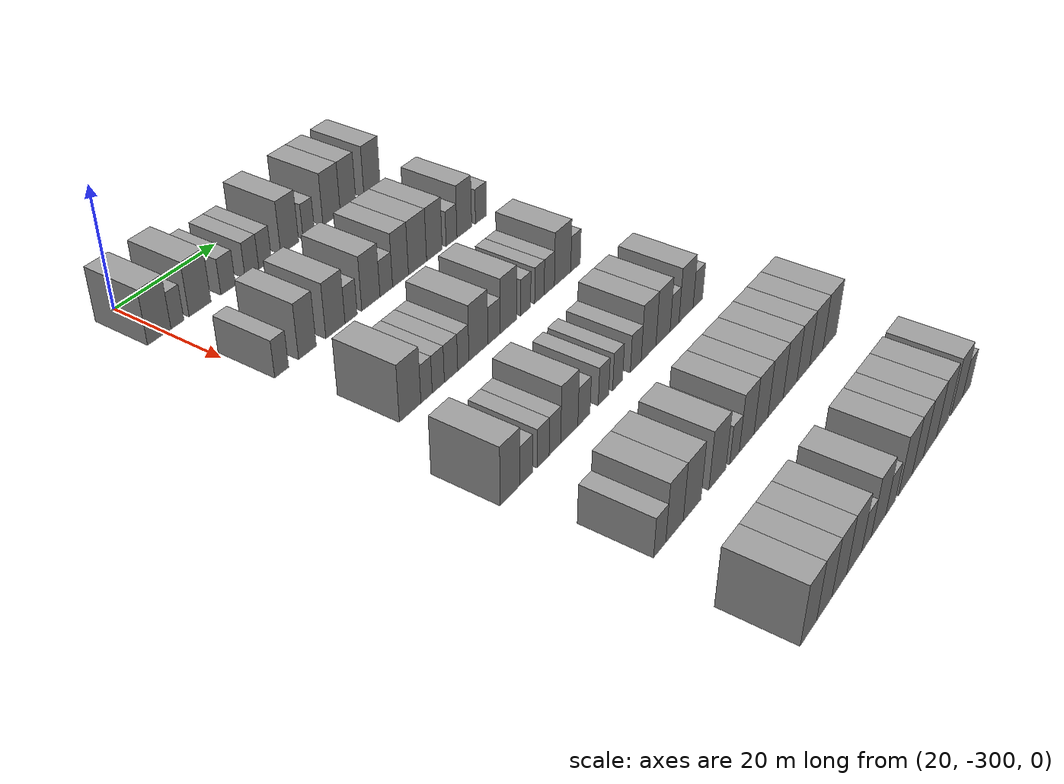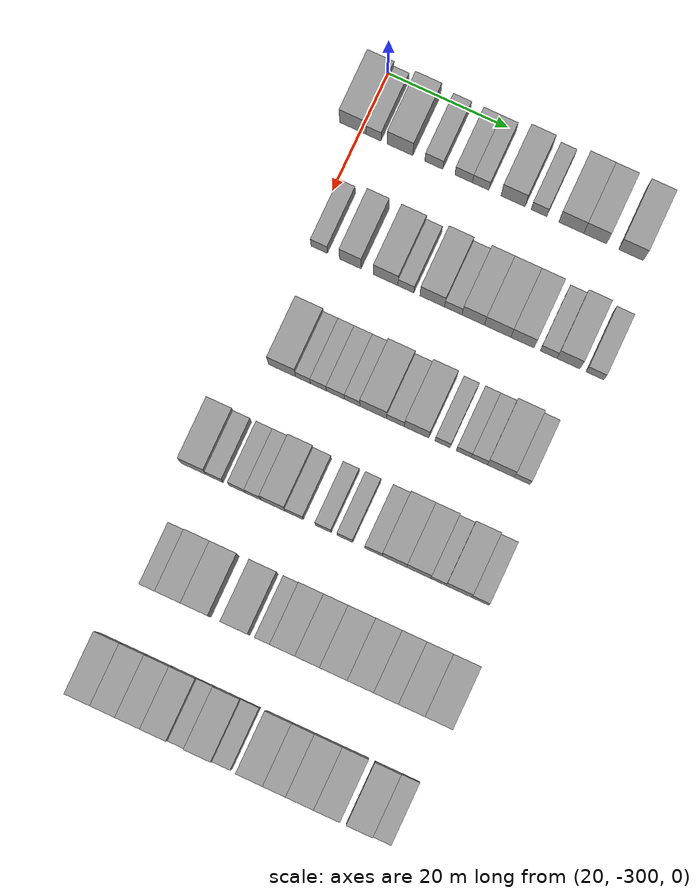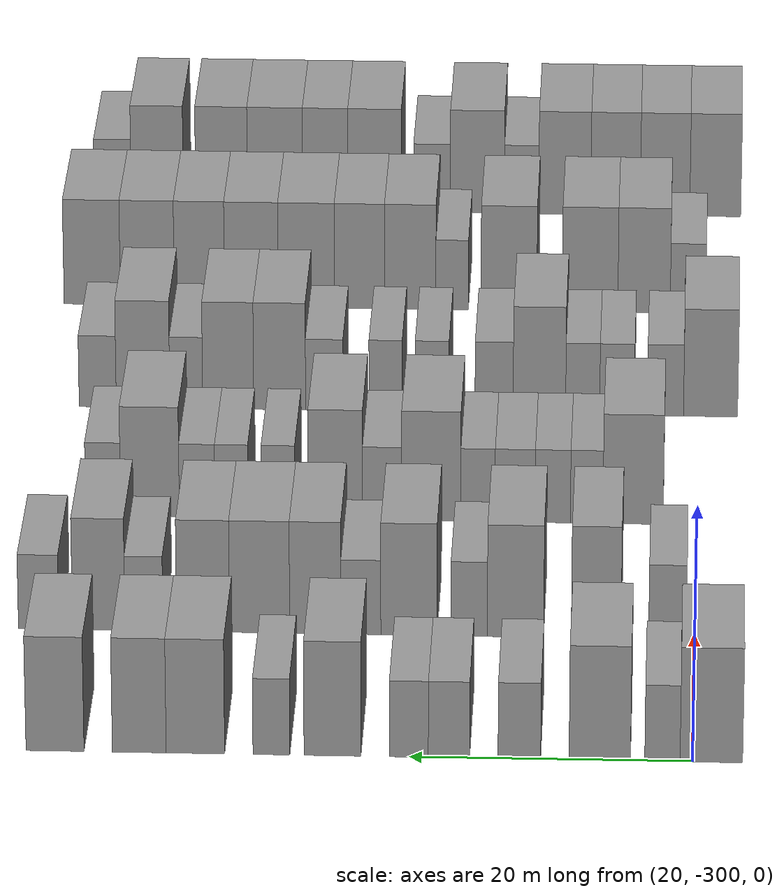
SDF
<sdf version="1.6">
 <world name="default">
  <model name="building_14">
   <static>1</static>
   <pose>25.0000 -301.2562 0 0.000000 0.000000 0.000000</pose>
   <link name="link">
    <pose>0 0 4.50 0 0 0</pose>
    <collision name="collision"><geometry><box><size>10.0000 4.3950 9.0000</size></box></geometry></collision>
    <visual name="visual">
     <cast_shadows>0</cast_shadows>
     <geometry><box><size>10.0000 4.3950 9.0000</size></box></geometry>
     <material>
      <script>
       <uri>model://grey_wall/materials/scripts</uri>
       <uri>model://grey_wall/materials/textures</uri>
       <name>vrc/grey_wall</name>
      </script>
     </material>
    </visual>
   </link>
  </model>
  <model name="building_15">
   <static>1</static>
   <pose>25.0000 -297.8179 0 0.000000 0.000000 0.000000</pose>
   <link name="link">
    <pose>0 0 3.00 0 0 0</pose>
    <collision name="collision"><geometry><box><size>10.0000 2.4814 6.0000</size></box></geometry></collision>
    <visual name="visual">
     <cast_shadows>0</cast_shadows>
     <geometry><box><size>10.0000 2.4814 6.0000</size></box></geometry>
     <material>
      <script>
       <uri>model://grey_wall/materials/scripts</uri>
       <uri>model://grey_wall/materials/textures</uri>
       <name>vrc/grey_wall</name>
      </script>
     </material>
    </visual>
   </link>
  </model>
  <model name="building_16">
   <static>1</static>
   <pose>25.0000 -293.4180 0 0.000000 0.000000 0.000000</pose>
   <link name="link">
    <pose>0 0 4.50 0 0 0</pose>
    <collision name="collision"><geometry><box><size>10.0000 4.3184 9.0000</size></box></geometry></collision>
    <visual name="visual">
     <cast_shadows>0</cast_shadows>
     <geometry><box><size>10.0000 4.3184 9.0000</size></box></geometry>
     <material>
      <script>
       <uri>model://grey_wall/materials/scripts</uri>
       <uri>model://grey_wall/materials/textures</uri>
       <name>vrc/grey_wall</name>
      </script>
     </material>
    </visual>
   </link>
  </model>
  <model name="building_17">
   <static>1</static>
   <pose>25.0000 -287.7597 0 0.000000 0.000000 0.000000</pose>
   <link name="link">
    <pose>0 0 3.00 0 0 0</pose>
    <collision name="collision"><geometry><box><size>10.0000 2.9983 6.0000</size></box></geometry></collision>
    <visual name="visual">
     <cast_shadows>0</cast_shadows>
     <geometry><box><size>10.0000 2.9983 6.0000</size></box></geometry>
     <material>
      <script>
       <uri>model://grey_wall/materials/scripts</uri>
       <uri>model://grey_wall/materials/textures</uri>
       <name>vrc/grey_wall</name>
      </script>
     </material>
    </visual>
   </link>
  </model>
  <model name="building_18">
   <static>1</static>
   <pose>25.0000 -282.8046 0 0.000000 0.000000 0.000000</pose>
   <link name="link">
    <pose>0 0 3.00 0 0 0</pose>
    <collision name="collision"><geometry><box><size>10.0000 2.9120 6.0000</size></box></geometry></collision>
    <visual name="visual">
     <cast_shadows>0</cast_shadows>
     <geometry><box><size>10.0000 2.9120 6.0000</size></box></geometry>
     <material>
      <script>
       <uri>model://grey_wall/materials/scripts</uri>
       <uri>model://grey_wall/materials/textures</uri>
       <name>vrc/grey_wall</name>
      </script>
     </material>
    </visual>
   </link>
  </model>
  <model name="building_19">
   <static>1</static>
   <pose>25.0000 -279.9776 0 0.000000 0.000000 0.000000</pose>
   <link name="link">
    <pose>0 0 3.00 0 0 0</pose>
    <collision name="collision"><geometry><box><size>10.0000 2.7420 6.0000</size></box></geometry></collision>
    <visual name="visual">
     <cast_shadows>0</cast_shadows>
     <geometry><box><size>10.0000 2.7420 6.0000</size></box></geometry>
     <material>
      <script>
       <uri>model://grey_wall/materials/scripts</uri>
       <uri>model://grey_wall/materials/textures</uri>
       <name>vrc/grey_wall</name>
      </script>
     </material>
    </visual>
   </link>
  </model>
  <model name="building_20">
   <static>1</static>
   <pose>25.0000 -274.6007 0 0.000000 0.000000 0.000000</pose>
   <link name="link">
    <pose>0 0 4.50 0 0 0</pose>
    <collision name="collision"><geometry><box><size>10.0000 4.0118 9.0000</size></box></geometry></collision>
    <visual name="visual">
     <cast_shadows>0</cast_shadows>
     <geometry><box><size>10.0000 4.0118 9.0000</size></box></geometry>
     <material>
      <script>
       <uri>model://grey_wall/materials/scripts</uri>
       <uri>model://grey_wall/materials/textures</uri>
       <name>vrc/grey_wall</name>
      </script>
     </material>
    </visual>
   </link>
  </model>
  <model name="building_21">
   <static>1</static>
   <pose>25.0000 -270.2955 0 0.000000 0.000000 0.000000</pose>
   <link name="link">
    <pose>0 0 3.00 0 0 0</pose>
    <collision name="collision"><geometry><box><size>10.0000 2.5986 6.0000</size></box></geometry></collision>
    <visual name="visual">
     <cast_shadows>0</cast_shadows>
     <geometry><box><size>10.0000 2.5986 6.0000</size></box></geometry>
     <material>
      <script>
       <uri>model://grey_wall/materials/scripts</uri>
       <uri>model://grey_wall/materials/textures</uri>
       <name>vrc/grey_wall</name>
      </script>
     </material>
    </visual>
   </link>
  </model>
  <model name="building_22">
   <static>1</static>
   <pose>25.0000 -264.9342 0 0.000000 0.000000 0.000000</pose>
   <link name="link">
    <pose>0 0 4.50 0 0 0</pose>
    <collision name="collision"><geometry><box><size>10.0000 4.1242 9.0000</size></box></geometry></collision>
    <visual name="visual">
     <cast_shadows>0</cast_shadows>
     <geometry><box><size>10.0000 4.1242 9.0000</size></box></geometry>
     <material>
      <script>
       <uri>model://grey_wall/materials/scripts</uri>
       <uri>model://grey_wall/materials/textures</uri>
       <name>vrc/grey_wall</name>
      </script>
     </material>
    </visual>
   </link>
  </model>
  <model name="building_23">
   <static>1</static>
   <pose>25.0000 -260.9729 0 0.000000 0.000000 0.000000</pose>
   <link name="link">
    <pose>0 0 4.50 0 0 0</pose>
    <collision name="collision"><geometry><box><size>10.0000 3.7984 9.0000</size></box></geometry></collision>
    <visual name="visual">
     <cast_shadows>0</cast_shadows>
     <geometry><box><size>10.0000 3.7984 9.0000</size></box></geometry>
     <material>
      <script>
       <uri>model://grey_wall/materials/scripts</uri>
       <uri>model://grey_wall/materials/textures</uri>
       <name>vrc/grey_wall</name>
      </script>
     </material>
    </visual>
   </link>
  </model>
  <model name="building_24">
   <static>1</static>
   <pose>25.0000 -255.0249 0 0.000000 0.000000 0.000000</pose>
   <link name="link">
    <pose>0 0 4.50 0 0 0</pose>
    <collision name="collision"><geometry><box><size>10.0000 4.0975 9.0000</size></box></geometry></collision>
    <visual name="visual">
     <cast_shadows>0</cast_shadows>
     <geometry><box><size>10.0000 4.0975 9.0000</size></box></geometry>
     <material>
      <script>
       <uri>model://grey_wall/materials/scripts</uri>
       <uri>model://grey_wall/materials/textures</uri>
       <name>vrc/grey_wall</name>
      </script>
     </material>
    </visual>
   </link>
  </model>
  <model name="building_187">
   <static>1</static>
   <pose>44.0000 -298.0338 0 0.000000 0.000000 0.000000</pose>
   <link name="link">
    <pose>0 0 3.00 0 0 0</pose>
    <collision name="collision"><geometry><box><size>10.0000 2.7262 6.0000</size></box></geometry></collision>
    <visual name="visual">
     <cast_shadows>0</cast_shadows>
     <geometry><box><size>10.0000 2.7262 6.0000</size></box></geometry>
     <material>
      <script>
       <uri>model://grey_wall/materials/scripts</uri>
       <uri>model://grey_wall/materials/textures</uri>
       <name>vrc/grey_wall</name>
      </script>
     </material>
    </visual>
   </link>
  </model>
  <model name="building_188">
   <static>1</static>
   <pose>44.0000 -292.8698 0 0.000000 0.000000 0.000000</pose>
   <link name="link">
    <pose>0 0 4.50 0 0 0</pose>
    <collision name="collision"><geometry><box><size>10.0000 3.6018 9.0000</size></box></geometry></collision>
    <visual name="visual">
     <cast_shadows>0</cast_shadows>
     <geometry><box><size>10.0000 3.6018 9.0000</size></box></geometry>
     <material>
      <script>
       <uri>model://grey_wall/materials/scripts</uri>
       <uri>model://grey_wall/materials/textures</uri>
       <name>vrc/grey_wall</name>
      </script>
     </material>
    </visual>
   </link>
  </model>
  <model name="building_189">
   <static>1</static>
   <pose>44.0000 -287.0259 0 0.000000 0.000000 0.000000</pose>
   <link name="link">
    <pose>0 0 4.50 0 0 0</pose>
    <collision name="collision"><geometry><box><size>10.0000 4.0859 9.0000</size></box></geometry></collision>
    <visual name="visual">
     <cast_shadows>0</cast_shadows>
     <geometry><box><size>10.0000 4.0859 9.0000</size></box></geometry>
     <material>
      <script>
       <uri>model://grey_wall/materials/scripts</uri>
       <uri>model://grey_wall/materials/textures</uri>
       <name>vrc/grey_wall</name>
      </script>
     </material>
    </visual>
   </link>
  </model>
  <model name="building_190">
   <static>1</static>
   <pose>44.0000 -283.6602 0 0.000000 0.000000 0.000000</pose>
   <link name="link">
    <pose>0 0 3.00 0 0 0</pose>
    <collision name="collision"><geometry><box><size>10.0000 2.6455 6.0000</size></box></geometry></collision>
    <visual name="visual">
     <cast_shadows>0</cast_shadows>
     <geometry><box><size>10.0000 2.6455 6.0000</size></box></geometry>
     <material>
      <script>
       <uri>model://grey_wall/materials/scripts</uri>
       <uri>model://grey_wall/materials/textures</uri>
       <name>vrc/grey_wall</name>
      </script>
     </material>
    </visual>
   </link>
  </model>
  <model name="building_191">
   <static>1</static>
   <pose>44.0000 -279.2972 0 0.000000 0.000000 0.000000</pose>
   <link name="link">
    <pose>0 0 4.50 0 0 0</pose>
    <collision name="collision"><geometry><box><size>10.0000 4.0805 9.0000</size></box></geometry></collision>
    <visual name="visual">
     <cast_shadows>0</cast_shadows>
     <geometry><box><size>10.0000 4.0805 9.0000</size></box></geometry>
     <material>
      <script>
       <uri>model://grey_wall/materials/scripts</uri>
       <uri>model://grey_wall/materials/textures</uri>
       <name>vrc/grey_wall</name>
      </script>
     </material>
    </visual>
   </link>
  </model>
  <model name="building_192">
   <static>1</static>
   <pose>44.0000 -275.8101 0 0.000000 0.000000 0.000000</pose>
   <link name="link">
    <pose>0 0 3.00 0 0 0</pose>
    <collision name="collision"><geometry><box><size>10.0000 2.8938 6.0000</size></box></geometry></collision>
    <visual name="visual">
     <cast_shadows>0</cast_shadows>
     <geometry><box><size>10.0000 2.8938 6.0000</size></box></geometry>
     <material>
      <script>
       <uri>model://grey_wall/materials/scripts</uri>
       <uri>model://grey_wall/materials/textures</uri>
       <name>vrc/grey_wall</name>
      </script>
     </material>
    </visual>
   </link>
  </model>
  <model name="building_193">
   <static>1</static>
   <pose>44.0000 -272.5025 0 0.000000 0.000000 0.000000</pose>
   <link name="link">
    <pose>0 0 4.50 0 0 0</pose>
    <collision name="collision"><geometry><box><size>10.0000 3.7213 9.0000</size></box></geometry></collision>
    <visual name="visual">
     <cast_shadows>0</cast_shadows>
     <geometry><box><size>10.0000 3.7213 9.0000</size></box></geometry>
     <material>
      <script>
       <uri>model://grey_wall/materials/scripts</uri>
       <uri>model://grey_wall/materials/textures</uri>
       <name>vrc/grey_wall</name>
      </script>
     </material>
    </visual>
   </link>
  </model>
  <model name="building_194">
   <static>1</static>
   <pose>44.0000 -268.4573 0 0.000000 0.000000 0.000000</pose>
   <link name="link">
    <pose>0 0 4.50 0 0 0</pose>
    <collision name="collision"><geometry><box><size>10.0000 4.3690 9.0000</size></box></geometry></collision>
    <visual name="visual">
     <cast_shadows>0</cast_shadows>
     <geometry><box><size>10.0000 4.3690 9.0000</size></box></geometry>
     <material>
      <script>
       <uri>model://grey_wall/materials/scripts</uri>
       <uri>model://grey_wall/materials/textures</uri>
       <name>vrc/grey_wall</name>
      </script>
     </material>
    </visual>
   </link>
  </model>
  <model name="building_195">
   <static>1</static>
   <pose>44.0000 -264.3526 0 0.000000 0.000000 0.000000</pose>
   <link name="link">
    <pose>0 0 4.50 0 0 0</pose>
    <collision name="collision"><geometry><box><size>10.0000 3.8405 9.0000</size></box></geometry></collision>
    <visual name="visual">
     <cast_shadows>0</cast_shadows>
     <geometry><box><size>10.0000 3.8405 9.0000</size></box></geometry>
     <material>
      <script>
       <uri>model://grey_wall/materials/scripts</uri>
       <uri>model://grey_wall/materials/textures</uri>
       <name>vrc/grey_wall</name>
      </script>
     </material>
    </visual>
   </link>
  </model>
  <model name="building_196">
   <static>1</static>
   <pose>44.0000 -260.0542 0 0.000000 0.000000 0.000000</pose>
   <link name="link">
    <pose>0 0 3.00 0 0 0</pose>
    <collision name="collision"><geometry><box><size>10.0000 2.7563 6.0000</size></box></geometry></collision>
    <visual name="visual">
     <cast_shadows>0</cast_shadows>
     <geometry><box><size>10.0000 2.7563 6.0000</size></box></geometry>
     <material>
      <script>
       <uri>model://grey_wall/materials/scripts</uri>
       <uri>model://grey_wall/materials/textures</uri>
       <name>vrc/grey_wall</name>
      </script>
     </material>
    </visual>
   </link>
  </model>
  <model name="building_197">
   <static>1</static>
   <pose>44.0000 -256.7686 0 0.000000 0.000000 0.000000</pose>
   <link name="link">
    <pose>0 0 4.50 0 0 0</pose>
    <collision name="collision"><geometry><box><size>10.0000 3.8148 9.0000</size></box></geometry></collision>
    <visual name="visual">
     <cast_shadows>0</cast_shadows>
     <geometry><box><size>10.0000 3.8148 9.0000</size></box></geometry>
     <material>
      <script>
       <uri>model://grey_wall/materials/scripts</uri>
       <uri>model://grey_wall/materials/textures</uri>
       <name>vrc/grey_wall</name>
      </script>
     </material>
    </visual>
   </link>
  </model>
  <model name="building_198">
   <static>1</static>
   <pose>44.0000 -252.3925 0 0.000000 0.000000 0.000000</pose>
   <link name="link">
    <pose>0 0 3.00 0 0 0</pose>
    <collision name="collision"><geometry><box><size>10.0000 2.9374 6.0000</size></box></geometry></collision>
    <visual name="visual">
     <cast_shadows>0</cast_shadows>
     <geometry><box><size>10.0000 2.9374 6.0000</size></box></geometry>
     <material>
      <script>
       <uri>model://grey_wall/materials/scripts</uri>
       <uri>model://grey_wall/materials/textures</uri>
       <name>vrc/grey_wall</name>
      </script>
     </material>
    </visual>
   </link>
  </model>
  <model name="building_365">
   <static>1</static>
   <pose>63.0000 -295.3301 0 0.000000 0.000000 0.000000</pose>
   <link name="link">
    <pose>0 0 4.50 0 0 0</pose>
    <collision name="collision"><geometry><box><size>10.0000 4.4912 9.0000</size></box></geometry></collision>
    <visual name="visual">
     <cast_shadows>0</cast_shadows>
     <geometry><box><size>10.0000 4.4912 9.0000</size></box></geometry>
     <material>
      <script>
       <uri>model://grey_wall/materials/scripts</uri>
       <uri>model://grey_wall/materials/textures</uri>
       <name>vrc/grey_wall</name>
      </script>
     </material>
    </visual>
   </link>
  </model>
  <model name="building_366">
   <static>1</static>
   <pose>63.0000 -291.8712 0 0.000000 0.000000 0.000000</pose>
   <link name="link">
    <pose>0 0 3.00 0 0 0</pose>
    <collision name="collision"><geometry><box><size>10.0000 2.4265 6.0000</size></box></geometry></collision>
    <visual name="visual">
     <cast_shadows>0</cast_shadows>
     <geometry><box><size>10.0000 2.4265 6.0000</size></box></geometry>
     <material>
      <script>
       <uri>model://grey_wall/materials/scripts</uri>
       <uri>model://grey_wall/materials/textures</uri>
       <name>vrc/grey_wall</name>
      </script>
     </material>
    </visual>
   </link>
  </model>
  <model name="building_367">
   <static>1</static>
   <pose>63.0000 -289.3367 0 0.000000 0.000000 0.000000</pose>
   <link name="link">
    <pose>0 0 3.00 0 0 0</pose>
    <collision name="collision"><geometry><box><size>10.0000 2.6427 6.0000</size></box></geometry></collision>
    <visual name="visual">
     <cast_shadows>0</cast_shadows>
     <geometry><box><size>10.0000 2.6427 6.0000</size></box></geometry>
     <material>
      <script>
       <uri>model://grey_wall/materials/scripts</uri>
       <uri>model://grey_wall/materials/textures</uri>
       <name>vrc/grey_wall</name>
      </script>
     </material>
    </visual>
   </link>
  </model>
  <model name="building_368">
   <static>1</static>
   <pose>63.0000 -286.5246 0 0.000000 0.000000 0.000000</pose>
   <link name="link">
    <pose>0 0 3.00 0 0 0</pose>
    <collision name="collision"><geometry><box><size>10.0000 2.9815 6.0000</size></box></geometry></collision>
    <visual name="visual">
     <cast_shadows>0</cast_shadows>
     <geometry><box><size>10.0000 2.9815 6.0000</size></box></geometry>
     <material>
      <script>
       <uri>model://grey_wall/materials/scripts</uri>
       <uri>model://grey_wall/materials/textures</uri>
       <name>vrc/grey_wall</name>
      </script>
     </material>
    </visual>
   </link>
  </model>
  <model name="building_369">
   <static>1</static>
   <pose>63.0000 -283.7560 0 0.000000 0.000000 0.000000</pose>
   <link name="link">
    <pose>0 0 3.00 0 0 0</pose>
    <collision name="collision"><geometry><box><size>10.0000 2.5556 6.0000</size></box></geometry></collision>
    <visual name="visual">
     <cast_shadows>0</cast_shadows>
     <geometry><box><size>10.0000 2.5556 6.0000</size></box></geometry>
     <material>
      <script>
       <uri>model://grey_wall/materials/scripts</uri>
       <uri>model://grey_wall/materials/textures</uri>
       <name>vrc/grey_wall</name>
      </script>
     </material>
    </visual>
   </link>
  </model>
  <model name="building_370">
   <static>1</static>
   <pose>63.0000 -280.2712 0 0.000000 0.000000 0.000000</pose>
   <link name="link">
    <pose>0 0 4.50 0 0 0</pose>
    <collision name="collision"><geometry><box><size>10.0000 4.4140 9.0000</size></box></geometry></collision>
    <visual name="visual">
     <cast_shadows>0</cast_shadows>
     <geometry><box><size>10.0000 4.4140 9.0000</size></box></geometry>
     <material>
      <script>
       <uri>model://grey_wall/materials/scripts</uri>
       <uri>model://grey_wall/materials/textures</uri>
       <name>vrc/grey_wall</name>
      </script>
     </material>
    </visual>
   </link>
  </model>
  <model name="building_371">
   <static>1</static>
   <pose>63.0000 -276.6045 0 0.000000 0.000000 0.000000</pose>
   <link name="link">
    <pose>0 0 3.00 0 0 0</pose>
    <collision name="collision"><geometry><box><size>10.0000 2.9195 6.0000</size></box></geometry></collision>
    <visual name="visual">
     <cast_shadows>0</cast_shadows>
     <geometry><box><size>10.0000 2.9195 6.0000</size></box></geometry>
     <material>
      <script>
       <uri>model://grey_wall/materials/scripts</uri>
       <uri>model://grey_wall/materials/textures</uri>
       <name>vrc/grey_wall</name>
      </script>
     </material>
    </visual>
   </link>
  </model>
  <model name="building_372">
   <static>1</static>
   <pose>63.0000 -273.1196 0 0.000000 0.000000 0.000000</pose>
   <link name="link">
    <pose>0 0 4.50 0 0 0</pose>
    <collision name="collision"><geometry><box><size>10.0000 4.0504 9.0000</size></box></geometry></collision>
    <visual name="visual">
     <cast_shadows>0</cast_shadows>
     <geometry><box><size>10.0000 4.0504 9.0000</size></box></geometry>
     <material>
      <script>
       <uri>model://grey_wall/materials/scripts</uri>
       <uri>model://grey_wall/materials/textures</uri>
       <name>vrc/grey_wall</name>
      </script>
     </material>
    </visual>
   </link>
  </model>
  <model name="building_373">
   <static>1</static>
   <pose>63.0000 -268.8436 0 0.000000 0.000000 0.000000</pose>
   <link name="link">
    <pose>0 0 3.00 0 0 0</pose>
    <collision name="collision"><geometry><box><size>10.0000 2.5015 6.0000</size></box></geometry></collision>
    <visual name="visual">
     <cast_shadows>0</cast_shadows>
     <geometry><box><size>10.0000 2.5015 6.0000</size></box></geometry>
     <material>
      <script>
       <uri>model://grey_wall/materials/scripts</uri>
       <uri>model://grey_wall/materials/textures</uri>
       <name>vrc/grey_wall</name>
      </script>
     </material>
    </visual>
   </link>
  </model>
  <model name="building_374">
   <static>1</static>
   <pose>63.0000 -265.3547 0 0.000000 0.000000 0.000000</pose>
   <link name="link">
    <pose>0 0 3.00 0 0 0</pose>
    <collision name="collision"><geometry><box><size>10.0000 2.4762 6.0000</size></box></geometry></collision>
    <visual name="visual">
     <cast_shadows>0</cast_shadows>
     <geometry><box><size>10.0000 2.4762 6.0000</size></box></geometry>
     <material>
      <script>
       <uri>model://grey_wall/materials/scripts</uri>
       <uri>model://grey_wall/materials/textures</uri>
       <name>vrc/grey_wall</name>
      </script>
     </material>
    </visual>
   </link>
  </model>
  <model name="building_375">
   <static>1</static>
   <pose>63.0000 -262.7815 0 0.000000 0.000000 0.000000</pose>
   <link name="link">
    <pose>0 0 3.00 0 0 0</pose>
    <collision name="collision"><geometry><box><size>10.0000 2.6702 6.0000</size></box></geometry></collision>
    <visual name="visual">
     <cast_shadows>0</cast_shadows>
     <geometry><box><size>10.0000 2.6702 6.0000</size></box></geometry>
     <material>
      <script>
       <uri>model://grey_wall/materials/scripts</uri>
       <uri>model://grey_wall/materials/textures</uri>
       <name>vrc/grey_wall</name>
      </script>
     </material>
    </visual>
   </link>
  </model>
  <model name="building_376">
   <static>1</static>
   <pose>63.0000 -259.2518 0 0.000000 0.000000 0.000000</pose>
   <link name="link">
    <pose>0 0 4.50 0 0 0</pose>
    <collision name="collision"><geometry><box><size>10.0000 4.3893 9.0000</size></box></geometry></collision>
    <visual name="visual">
     <cast_shadows>0</cast_shadows>
     <geometry><box><size>10.0000 4.3893 9.0000</size></box></geometry>
     <material>
      <script>
       <uri>model://grey_wall/materials/scripts</uri>
       <uri>model://grey_wall/materials/textures</uri>
       <name>vrc/grey_wall</name>
      </script>
     </material>
    </visual>
   </link>
  </model>
  <model name="building_377">
   <static>1</static>
   <pose>63.0000 -255.7470 0 0.000000 0.000000 0.000000</pose>
   <link name="link">
    <pose>0 0 3.00 0 0 0</pose>
    <collision name="collision"><geometry><box><size>10.0000 2.6202 6.0000</size></box></geometry></collision>
    <visual name="visual">
     <cast_shadows>0</cast_shadows>
     <geometry><box><size>10.0000 2.6202 6.0000</size></box></geometry>
     <material>
      <script>
       <uri>model://grey_wall/materials/scripts</uri>
       <uri>model://grey_wall/materials/textures</uri>
       <name>vrc/grey_wall</name>
      </script>
     </material>
    </visual>
   </link>
  </model>
  <model name="building_537">
   <static>1</static>
   <pose>82.0000 -301.0578 0 0.000000 0.000000 0.000000</pose>
   <link name="link">
    <pose>0 0 4.50 0 0 0</pose>
    <collision name="collision"><geometry><box><size>10.0000 4.1475 9.0000</size></box></geometry></collision>
    <visual name="visual">
     <cast_shadows>0</cast_shadows>
     <geometry><box><size>10.0000 4.1475 9.0000</size></box></geometry>
     <material>
      <script>
       <uri>model://grey_wall/materials/scripts</uri>
       <uri>model://grey_wall/materials/textures</uri>
       <name>vrc/grey_wall</name>
      </script>
     </material>
    </visual>
   </link>
  </model>
  <model name="building_538">
   <static>1</static>
   <pose>82.0000 -297.5977 0 0.000000 0.000000 0.000000</pose>
   <link name="link">
    <pose>0 0 3.00 0 0 0</pose>
    <collision name="collision"><geometry><box><size>10.0000 2.7727 6.0000</size></box></geometry></collision>
    <visual name="visual">
     <cast_shadows>0</cast_shadows>
     <geometry><box><size>10.0000 2.7727 6.0000</size></box></geometry>
     <material>
      <script>
       <uri>model://grey_wall/materials/scripts</uri>
       <uri>model://grey_wall/materials/textures</uri>
       <name>vrc/grey_wall</name>
      </script>
     </material>
    </visual>
   </link>
  </model>
  <model name="building_539">
   <static>1</static>
   <pose>82.0000 -293.8858 0 0.000000 0.000000 0.000000</pose>
   <link name="link">
    <pose>0 0 3.00 0 0 0</pose>
    <collision name="collision"><geometry><box><size>10.0000 2.6512 6.0000</size></box></geometry></collision>
    <visual name="visual">
     <cast_shadows>0</cast_shadows>
     <geometry><box><size>10.0000 2.6512 6.0000</size></box></geometry>
     <material>
      <script>
       <uri>model://grey_wall/materials/scripts</uri>
       <uri>model://grey_wall/materials/textures</uri>
       <name>vrc/grey_wall</name>
      </script>
     </material>
    </visual>
   </link>
  </model>
  <model name="building_540">
   <static>1</static>
   <pose>82.0000 -291.2548 0 0.000000 0.000000 0.000000</pose>
   <link name="link">
    <pose>0 0 3.00 0 0 0</pose>
    <collision name="collision"><geometry><box><size>10.0000 2.6107 6.0000</size></box></geometry></collision>
    <visual name="visual">
     <cast_shadows>0</cast_shadows>
     <geometry><box><size>10.0000 2.6107 6.0000</size></box></geometry>
     <material>
      <script>
       <uri>model://grey_wall/materials/scripts</uri>
       <uri>model://grey_wall/materials/textures</uri>
       <name>vrc/grey_wall</name>
      </script>
     </material>
    </visual>
   </link>
  </model>
  <model name="building_541">
   <static>1</static>
   <pose>82.0000 -287.9362 0 0.000000 0.000000 0.000000</pose>
   <link name="link">
    <pose>0 0 4.50 0 0 0</pose>
    <collision name="collision"><geometry><box><size>10.0000 4.0264 9.0000</size></box></geometry></collision>
    <visual name="visual">
     <cast_shadows>0</cast_shadows>
     <geometry><box><size>10.0000 4.0264 9.0000</size></box></geometry>
     <material>
      <script>
       <uri>model://grey_wall/materials/scripts</uri>
       <uri>model://grey_wall/materials/textures</uri>
       <name>vrc/grey_wall</name>
      </script>
     </material>
    </visual>
   </link>
  </model>
  <model name="building_542">
   <static>1</static>
   <pose>82.0000 -284.4585 0 0.000000 0.000000 0.000000</pose>
   <link name="link">
    <pose>0 0 3.00 0 0 0</pose>
    <collision name="collision"><geometry><box><size>10.0000 2.9289 6.0000</size></box></geometry></collision>
    <visual name="visual">
     <cast_shadows>0</cast_shadows>
     <geometry><box><size>10.0000 2.9289 6.0000</size></box></geometry>
     <material>
      <script>
       <uri>model://grey_wall/materials/scripts</uri>
       <uri>model://grey_wall/materials/textures</uri>
       <name>vrc/grey_wall</name>
      </script>
     </material>
    </visual>
   </link>
  </model>
  <model name="building_543">
   <static>1</static>
   <pose>82.0000 -279.6965 0 0.000000 0.000000 0.000000</pose>
   <link name="link">
    <pose>0 0 3.00 0 0 0</pose>
    <collision name="collision"><geometry><box><size>10.0000 2.5951 6.0000</size></box></geometry></collision>
    <visual name="visual">
     <cast_shadows>0</cast_shadows>
     <geometry><box><size>10.0000 2.5951 6.0000</size></box></geometry>
     <material>
      <script>
       <uri>model://grey_wall/materials/scripts</uri>
       <uri>model://grey_wall/materials/textures</uri>
       <name>vrc/grey_wall</name>
      </script>
     </material>
    </visual>
   </link>
  </model>
  <model name="building_544">
   <static>1</static>
   <pose>82.0000 -276.1270 0 0.000000 0.000000 0.000000</pose>
   <link name="link">
    <pose>0 0 3.00 0 0 0</pose>
    <collision name="collision"><geometry><box><size>10.0000 2.5439 6.0000</size></box></geometry></collision>
    <visual name="visual">
     <cast_shadows>0</cast_shadows>
     <geometry><box><size>10.0000 2.5439 6.0000</size></box></geometry>
     <material>
      <script>
       <uri>model://grey_wall/materials/scripts</uri>
       <uri>model://grey_wall/materials/textures</uri>
       <name>vrc/grey_wall</name>
      </script>
     </material>
    </visual>
   </link>
  </model>
  <model name="building_545">
   <static>1</static>
   <pose>82.0000 -271.4178 0 0.000000 0.000000 0.000000</pose>
   <link name="link">
    <pose>0 0 3.00 0 0 0</pose>
    <collision name="collision"><geometry><box><size>10.0000 2.8745 6.0000</size></box></geometry></collision>
    <visual name="visual">
     <cast_shadows>0</cast_shadows>
     <geometry><box><size>10.0000 2.8745 6.0000</size></box></geometry>
     <material>
      <script>
       <uri>model://grey_wall/materials/scripts</uri>
       <uri>model://grey_wall/materials/textures</uri>
       <name>vrc/grey_wall</name>
      </script>
     </material>
    </visual>
   </link>
  </model>
  <model name="building_546">
   <static>1</static>
   <pose>82.0000 -267.9855 0 0.000000 0.000000 0.000000</pose>
   <link name="link">
    <pose>0 0 4.50 0 0 0</pose>
    <collision name="collision"><geometry><box><size>10.0000 3.9901 9.0000</size></box></geometry></collision>
    <visual name="visual">
     <cast_shadows>0</cast_shadows>
     <geometry><box><size>10.0000 3.9901 9.0000</size></box></geometry>
     <material>
      <script>
       <uri>model://grey_wall/materials/scripts</uri>
       <uri>model://grey_wall/materials/textures</uri>
       <name>vrc/grey_wall</name>
      </script>
     </material>
    </visual>
   </link>
  </model>
  <model name="building_547">
   <static>1</static>
   <pose>82.0000 -264.0298 0 0.000000 0.000000 0.000000</pose>
   <link name="link">
    <pose>0 0 4.50 0 0 0</pose>
    <collision name="collision"><geometry><box><size>10.0000 3.9214 9.0000</size></box></geometry></collision>
    <visual name="visual">
     <cast_shadows>0</cast_shadows>
     <geometry><box><size>10.0000 3.9214 9.0000</size></box></geometry>
     <material>
      <script>
       <uri>model://grey_wall/materials/scripts</uri>
       <uri>model://grey_wall/materials/textures</uri>
       <name>vrc/grey_wall</name>
      </script>
     </material>
    </visual>
   </link>
  </model>
  <model name="building_548">
   <static>1</static>
   <pose>82.0000 -260.8040 0 0.000000 0.000000 0.000000</pose>
   <link name="link">
    <pose>0 0 3.00 0 0 0</pose>
    <collision name="collision"><geometry><box><size>10.0000 2.5300 6.0000</size></box></geometry></collision>
    <visual name="visual">
     <cast_shadows>0</cast_shadows>
     <geometry><box><size>10.0000 2.5300 6.0000</size></box></geometry>
     <material>
      <script>
       <uri>model://grey_wall/materials/scripts</uri>
       <uri>model://grey_wall/materials/textures</uri>
       <name>vrc/grey_wall</name>
      </script>
     </material>
    </visual>
   </link>
  </model>
  <model name="building_549">
   <static>1</static>
   <pose>82.0000 -257.4780 0 0.000000 0.000000 0.000000</pose>
   <link name="link">
    <pose>0 0 4.50 0 0 0</pose>
    <collision name="collision"><geometry><box><size>10.0000 4.1220 9.0000</size></box></geometry></collision>
    <visual name="visual">
     <cast_shadows>0</cast_shadows>
     <geometry><box><size>10.0000 4.1220 9.0000</size></box></geometry>
     <material>
      <script>
       <uri>model://grey_wall/materials/scripts</uri>
       <uri>model://grey_wall/materials/textures</uri>
       <name>vrc/grey_wall</name>
      </script>
     </material>
    </visual>
   </link>
  </model>
  <model name="building_550">
   <static>1</static>
   <pose>82.0000 -253.9893 0 0.000000 0.000000 0.000000</pose>
   <link name="link">
    <pose>0 0 3.00 0 0 0</pose>
    <collision name="collision"><geometry><box><size>10.0000 2.8555 6.0000</size></box></geometry></collision>
    <visual name="visual">
     <cast_shadows>0</cast_shadows>
     <geometry><box><size>10.0000 2.8555 6.0000</size></box></geometry>
     <material>
      <script>
       <uri>model://grey_wall/materials/scripts</uri>
       <uri>model://grey_wall/materials/textures</uri>
       <name>vrc/grey_wall</name>
      </script>
     </material>
    </visual>
   </link>
  </model>
  <model name="building_709">
   <static>1</static>
   <pose>101.0000 -299.2352 0 0.000000 0.000000 0.000000</pose>
   <link name="link">
    <pose>0 0 3.00 0 0 0</pose>
    <collision name="collision"><geometry><box><size>10.0000 2.8057 6.0000</size></box></geometry></collision>
    <visual name="visual">
     <cast_shadows>0</cast_shadows>
     <geometry><box><size>10.0000 2.8057 6.0000</size></box></geometry>
     <material>
      <script>
       <uri>model://grey_wall/materials/scripts</uri>
       <uri>model://grey_wall/materials/textures</uri>
       <name>vrc/grey_wall</name>
      </script>
     </material>
    </visual>
   </link>
  </model>
  <model name="building_710">
   <static>1</static>
   <pose>101.0000 -295.7695 0 0.000000 0.000000 0.000000</pose>
   <link name="link">
    <pose>0 0 4.50 0 0 0</pose>
    <collision name="collision"><geometry><box><size>10.0000 4.1257 9.0000</size></box></geometry></collision>
    <visual name="visual">
     <cast_shadows>0</cast_shadows>
     <geometry><box><size>10.0000 4.1257 9.0000</size></box></geometry>
     <material>
      <script>
       <uri>model://grey_wall/materials/scripts</uri>
       <uri>model://grey_wall/materials/textures</uri>
       <name>vrc/grey_wall</name>
      </script>
     </material>
    </visual>
   </link>
  </model>
  <model name="building_711">
   <static>1</static>
   <pose>101.0000 -291.5150 0 0.000000 0.000000 0.000000</pose>
   <link name="link">
    <pose>0 0 4.50 0 0 0</pose>
    <collision name="collision"><geometry><box><size>10.0000 4.3833 9.0000</size></box></geometry></collision>
    <visual name="visual">
     <cast_shadows>0</cast_shadows>
     <geometry><box><size>10.0000 4.3833 9.0000</size></box></geometry>
     <material>
      <script>
       <uri>model://grey_wall/materials/scripts</uri>
       <uri>model://grey_wall/materials/textures</uri>
       <name>vrc/grey_wall</name>
      </script>
     </material>
    </visual>
   </link>
  </model>
  <model name="building_712">
   <static>1</static>
   <pose>101.0000 -285.1224 0 0.000000 0.000000 0.000000</pose>
   <link name="link">
    <pose>0 0 4.50 0 0 0</pose>
    <collision name="collision"><geometry><box><size>10.0000 4.4019 9.0000</size></box></geometry></collision>
    <visual name="visual">
     <cast_shadows>0</cast_shadows>
     <geometry><box><size>10.0000 4.4019 9.0000</size></box></geometry>
     <material>
      <script>
       <uri>model://grey_wall/materials/scripts</uri>
       <uri>model://grey_wall/materials/textures</uri>
       <name>vrc/grey_wall</name>
      </script>
     </material>
    </visual>
   </link>
  </model>
  <model name="building_713">
   <static>1</static>
   <pose>101.0000 -280.6399 0 0.000000 0.000000 0.000000</pose>
   <link name="link">
    <pose>0 0 3.00 0 0 0</pose>
    <collision name="collision"><geometry><box><size>10.0000 2.5631 6.0000</size></box></geometry></collision>
    <visual name="visual">
     <cast_shadows>0</cast_shadows>
     <geometry><box><size>10.0000 2.5631 6.0000</size></box></geometry>
     <material>
      <script>
       <uri>model://grey_wall/materials/scripts</uri>
       <uri>model://grey_wall/materials/textures</uri>
       <name>vrc/grey_wall</name>
      </script>
     </material>
    </visual>
   </link>
  </model>
  <model name="building_714">
   <static>1</static>
   <pose>101.0000 -277.3312 0 0.000000 0.000000 0.000000</pose>
   <link name="link">
    <pose>0 0 4.50 0 0 0</pose>
    <collision name="collision"><geometry><box><size>10.0000 4.0543 9.0000</size></box></geometry></collision>
    <visual name="visual">
     <cast_shadows>0</cast_shadows>
     <geometry><box><size>10.0000 4.0543 9.0000</size></box></geometry>
     <material>
      <script>
       <uri>model://grey_wall/materials/scripts</uri>
       <uri>model://grey_wall/materials/textures</uri>
       <name>vrc/grey_wall</name>
      </script>
     </material>
    </visual>
   </link>
  </model>
  <model name="building_715">
   <static>1</static>
   <pose>101.0000 -273.3279 0 0.000000 0.000000 0.000000</pose>
   <link name="link">
    <pose>0 0 4.50 0 0 0</pose>
    <collision name="collision"><geometry><box><size>10.0000 3.9521 9.0000</size></box></geometry></collision>
    <visual name="visual">
     <cast_shadows>0</cast_shadows>
     <geometry><box><size>10.0000 3.9521 9.0000</size></box></geometry>
     <material>
      <script>
       <uri>model://grey_wall/materials/scripts</uri>
       <uri>model://grey_wall/materials/textures</uri>
       <name>vrc/grey_wall</name>
      </script>
     </material>
    </visual>
   </link>
  </model>
  <model name="building_716">
   <static>1</static>
   <pose>101.0000 -269.1280 0 0.000000 0.000000 0.000000</pose>
   <link name="link">
    <pose>0 0 4.50 0 0 0</pose>
    <collision name="collision"><geometry><box><size>10.0000 4.4478 9.0000</size></box></geometry></collision>
    <visual name="visual">
     <cast_shadows>0</cast_shadows>
     <geometry><box><size>10.0000 4.4478 9.0000</size></box></geometry>
     <material>
      <script>
       <uri>model://grey_wall/materials/scripts</uri>
       <uri>model://grey_wall/materials/textures</uri>
       <name>vrc/grey_wall</name>
      </script>
     </material>
    </visual>
   </link>
  </model>
  <model name="building_717">
   <static>1</static>
   <pose>101.0000 -264.7851 0 0.000000 0.000000 0.000000</pose>
   <link name="link">
    <pose>0 0 4.50 0 0 0</pose>
    <collision name="collision"><geometry><box><size>10.0000 4.2379 9.0000</size></box></geometry></collision>
    <visual name="visual">
     <cast_shadows>0</cast_shadows>
     <geometry><box><size>10.0000 4.2379 9.0000</size></box></geometry>
     <material>
      <script>
       <uri>model://grey_wall/materials/scripts</uri>
       <uri>model://grey_wall/materials/textures</uri>
       <name>vrc/grey_wall</name>
      </script>
     </material>
    </visual>
   </link>
  </model>
  <model name="building_718">
   <static>1</static>
   <pose>101.0000 -260.6823 0 0.000000 0.000000 0.000000</pose>
   <link name="link">
    <pose>0 0 4.50 0 0 0</pose>
    <collision name="collision"><geometry><box><size>10.0000 3.9677 9.0000</size></box></geometry></collision>
    <visual name="visual">
     <cast_shadows>0</cast_shadows>
     <geometry><box><size>10.0000 3.9677 9.0000</size></box></geometry>
     <material>
      <script>
       <uri>model://grey_wall/materials/scripts</uri>
       <uri>model://grey_wall/materials/textures</uri>
       <name>vrc/grey_wall</name>
      </script>
     </material>
    </visual>
   </link>
  </model>
  <model name="building_719">
   <static>1</static>
   <pose>101.0000 -256.5645 0 0.000000 0.000000 0.000000</pose>
   <link name="link">
    <pose>0 0 4.50 0 0 0</pose>
    <collision name="collision"><geometry><box><size>10.0000 4.2678 9.0000</size></box></geometry></collision>
    <visual name="visual">
     <cast_shadows>0</cast_shadows>
     <geometry><box><size>10.0000 4.2678 9.0000</size></box></geometry>
     <material>
      <script>
       <uri>model://grey_wall/materials/scripts</uri>
       <uri>model://grey_wall/materials/textures</uri>
       <name>vrc/grey_wall</name>
      </script>
     </material>
    </visual>
   </link>
  </model>
  <model name="building_720">
   <static>1</static>
   <pose>101.0000 -252.2050 0 0.000000 0.000000 0.000000</pose>
   <link name="link">
    <pose>0 0 4.50 0 0 0</pose>
    <collision name="collision"><geometry><box><size>10.0000 4.4512 9.0000</size></box></geometry></collision>
    <visual name="visual">
     <cast_shadows>0</cast_shadows>
     <geometry><box><size>10.0000 4.4512 9.0000</size></box></geometry>
     <material>
      <script>
       <uri>model://grey_wall/materials/scripts</uri>
       <uri>model://grey_wall/materials/textures</uri>
       <name>vrc/grey_wall</name>
      </script>
     </material>
    </visual>
   </link>
  </model>
  <model name="building_884">
   <static>1</static>
   <pose>120.0000 -301.3419 0 0.000000 0.000000 0.000000</pose>
   <link name="link">
    <pose>0 0 4.50 0 0 0</pose>
    <collision name="collision"><geometry><box><size>10.0000 4.1235 9.0000</size></box></geometry></collision>
    <visual name="visual">
     <cast_shadows>0</cast_shadows>
     <geometry><box><size>10.0000 4.1235 9.0000</size></box></geometry>
     <material>
      <script>
       <uri>model://grey_wall/materials/scripts</uri>
       <uri>model://grey_wall/materials/textures</uri>
       <name>vrc/grey_wall</name>
      </script>
     </material>
    </visual>
   </link>
  </model>
  <model name="building_885">
   <static>1</static>
   <pose>120.0000 -297.2781 0 0.000000 0.000000 0.000000</pose>
   <link name="link">
    <pose>0 0 4.50 0 0 0</pose>
    <collision name="collision"><geometry><box><size>10.0000 4.0041 9.0000</size></box></geometry></collision>
    <visual name="visual">
     <cast_shadows>0</cast_shadows>
     <geometry><box><size>10.0000 4.0041 9.0000</size></box></geometry>
     <material>
      <script>
       <uri>model://grey_wall/materials/scripts</uri>
       <uri>model://grey_wall/materials/textures</uri>
       <name>vrc/grey_wall</name>
      </script>
     </material>
    </visual>
   </link>
  </model>
  <model name="building_886">
   <static>1</static>
   <pose>120.0000 -293.2750 0 0.000000 0.000000 0.000000</pose>
   <link name="link">
    <pose>0 0 4.50 0 0 0</pose>
    <collision name="collision"><geometry><box><size>10.0000 4.0022 9.0000</size></box></geometry></collision>
    <visual name="visual">
     <cast_shadows>0</cast_shadows>
     <geometry><box><size>10.0000 4.0022 9.0000</size></box></geometry>
     <material>
      <script>
       <uri>model://grey_wall/materials/scripts</uri>
       <uri>model://grey_wall/materials/textures</uri>
       <name>vrc/grey_wall</name>
      </script>
     </material>
    </visual>
   </link>
  </model>
  <model name="building_887">
   <static>1</static>
   <pose>120.0000 -289.1677 0 0.000000 0.000000 0.000000</pose>
   <link name="link">
    <pose>0 0 4.50 0 0 0</pose>
    <collision name="collision"><geometry><box><size>10.0000 4.2124 9.0000</size></box></geometry></collision>
    <visual name="visual">
     <cast_shadows>0</cast_shadows>
     <geometry><box><size>10.0000 4.2124 9.0000</size></box></geometry>
     <material>
      <script>
       <uri>model://grey_wall/materials/scripts</uri>
       <uri>model://grey_wall/materials/textures</uri>
       <name>vrc/grey_wall</name>
      </script>
     </material>
    </visual>
   </link>
  </model>
  <model name="building_888">
   <static>1</static>
   <pose>120.0000 -285.6672 0 0.000000 0.000000 0.000000</pose>
   <link name="link">
    <pose>0 0 3.00 0 0 0</pose>
    <collision name="collision"><geometry><box><size>10.0000 2.7884 6.0000</size></box></geometry></collision>
    <visual name="visual">
     <cast_shadows>0</cast_shadows>
     <geometry><box><size>10.0000 2.7884 6.0000</size></box></geometry>
     <material>
      <script>
       <uri>model://grey_wall/materials/scripts</uri>
       <uri>model://grey_wall/materials/textures</uri>
       <name>vrc/grey_wall</name>
      </script>
     </material>
    </visual>
   </link>
  </model>
  <model name="building_889">
   <static>1</static>
   <pose>120.0000 -282.0864 0 0.000000 0.000000 0.000000</pose>
   <link name="link">
    <pose>0 0 4.50 0 0 0</pose>
    <collision name="collision"><geometry><box><size>10.0000 4.3732 9.0000</size></box></geometry></collision>
    <visual name="visual">
     <cast_shadows>0</cast_shadows>
     <geometry><box><size>10.0000 4.3732 9.0000</size></box></geometry>
     <material>
      <script>
       <uri>model://grey_wall/materials/scripts</uri>
       <uri>model://grey_wall/materials/textures</uri>
       <name>vrc/grey_wall</name>
      </script>
     </material>
    </visual>
   </link>
  </model>
  <model name="building_890">
   <static>1</static>
   <pose>120.0000 -278.4117 0 0.000000 0.000000 0.000000</pose>
   <link name="link">
    <pose>0 0 3.00 0 0 0</pose>
    <collision name="collision"><geometry><box><size>10.0000 2.9762 6.0000</size></box></geometry></collision>
    <visual name="visual">
     <cast_shadows>0</cast_shadows>
     <geometry><box><size>10.0000 2.9762 6.0000</size></box></geometry>
     <material>
      <script>
       <uri>model://grey_wall/materials/scripts</uri>
       <uri>model://grey_wall/materials/textures</uri>
       <name>vrc/grey_wall</name>
      </script>
     </material>
    </visual>
   </link>
  </model>
  <model name="building_891">
   <static>1</static>
   <pose>120.0000 -273.7614 0 0.000000 0.000000 0.000000</pose>
   <link name="link">
    <pose>0 0 4.50 0 0 0</pose>
    <collision name="collision"><geometry><box><size>10.0000 4.3244 9.0000</size></box></geometry></collision>
    <visual name="visual">
     <cast_shadows>0</cast_shadows>
     <geometry><box><size>10.0000 4.3244 9.0000</size></box></geometry>
     <material>
      <script>
       <uri>model://grey_wall/materials/scripts</uri>
       <uri>model://grey_wall/materials/textures</uri>
       <name>vrc/grey_wall</name>
      </script>
     </material>
    </visual>
   </link>
  </model>
  <model name="building_892">
   <static>1</static>
   <pose>120.0000 -269.7646 0 0.000000 0.000000 0.000000</pose>
   <link name="link">
    <pose>0 0 4.50 0 0 0</pose>
    <collision name="collision"><geometry><box><size>10.0000 3.6692 9.0000</size></box></geometry></collision>
    <visual name="visual">
     <cast_shadows>0</cast_shadows>
     <geometry><box><size>10.0000 3.6692 9.0000</size></box></geometry>
     <material>
      <script>
       <uri>model://grey_wall/materials/scripts</uri>
       <uri>model://grey_wall/materials/textures</uri>
       <name>vrc/grey_wall</name>
      </script>
     </material>
    </visual>
   </link>
  </model>
  <model name="building_893">
   <static>1</static>
   <pose>120.0000 -265.6884 0 0.000000 0.000000 0.000000</pose>
   <link name="link">
    <pose>0 0 4.50 0 0 0</pose>
    <collision name="collision"><geometry><box><size>10.0000 4.4832 9.0000</size></box></geometry></collision>
    <visual name="visual">
     <cast_shadows>0</cast_shadows>
     <geometry><box><size>10.0000 4.4832 9.0000</size></box></geometry>
     <material>
      <script>
       <uri>model://grey_wall/materials/scripts</uri>
       <uri>model://grey_wall/materials/textures</uri>
       <name>vrc/grey_wall</name>
      </script>
     </material>
    </visual>
   </link>
  </model>
  <model name="building_894">
   <static>1</static>
   <pose>120.0000 -261.3462 0 0.000000 0.000000 0.000000</pose>
   <link name="link">
    <pose>0 0 4.50 0 0 0</pose>
    <collision name="collision"><geometry><box><size>10.0000 4.2012 9.0000</size></box></geometry></collision>
    <visual name="visual">
     <cast_shadows>0</cast_shadows>
     <geometry><box><size>10.0000 4.2012 9.0000</size></box></geometry>
     <material>
      <script>
       <uri>model://grey_wall/materials/scripts</uri>
       <uri>model://grey_wall/materials/textures</uri>
       <name>vrc/grey_wall</name>
      </script>
     </material>
    </visual>
   </link>
  </model>
  <model name="building_895">
   <static>1</static>
   <pose>120.0000 -256.1289 0 0.000000 0.000000 0.000000</pose>
   <link name="link">
    <pose>0 0 4.50 0 0 0</pose>
    <collision name="collision"><geometry><box><size>10.0000 4.2335 9.0000</size></box></geometry></collision>
    <visual name="visual">
     <cast_shadows>0</cast_shadows>
     <geometry><box><size>10.0000 4.2335 9.0000</size></box></geometry>
     <material>
      <script>
       <uri>model://grey_wall/materials/scripts</uri>
       <uri>model://grey_wall/materials/textures</uri>
       <name>vrc/grey_wall</name>
      </script>
     </material>
    </visual>
   </link>
  </model>
  <model name="building_896">
   <static>1</static>
   <pose>120.0000 -252.5176 0 0.000000 0.000000 0.000000</pose>
   <link name="link">
    <pose>0 0 3.00 0 0 0</pose>
    <collision name="collision"><geometry><box><size>10.0000 2.9891 6.0000</size></box></geometry></collision>
    <visual name="visual">
     <cast_shadows>0</cast_shadows>
     <geometry><box><size>10.0000 2.9891 6.0000</size></box></geometry>
     <material>
      <script>
       <uri>model://grey_wall/materials/scripts</uri>
       <uri>model://grey_wall/materials/textures</uri>
       <name>vrc/grey_wall</name>
      </script>
     </material>
    </visual>
   </link>
  </model>
 </world>
</sdf>
